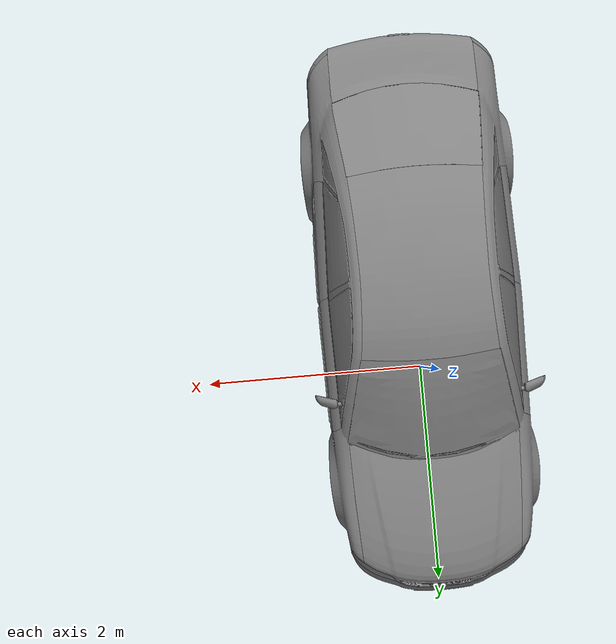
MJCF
<mujoco model="obj_car">
    <asset>
    <!-- 모델 자산 정의 -->
    <mesh name = "back_bumper" file = "../car_mesh/back_bumper.obj"/>
    <mesh name = "back_left_door" file= "../car_mesh/back_left_door.obj"/>
    <mesh name = "back_left_wheel" file= "../car_mesh/back_left_wheel.obj"/>
    <mesh name = "back_left_window" file= "../car_mesh/back_left_window.obj"/>
    <mesh name = "back_license_plate" file= "../car_mesh/back_license_plate.obj"/>
    <mesh name = "back_right_door" file= "../car_mesh/back_right_door.obj"/>
    <mesh name = "back_right_wheel" file= "../car_mesh/back_right_wheel.obj"/>
    <mesh name = "back_right_window" file= "../car_mesh/back_right_window.obj"/>
    <mesh name = "back_windshield" file= "../car_mesh/back_windshield.obj"/>
    <mesh name = "front_bumper" file= "../car_mesh/front_bumper.obj"/>
    <mesh name = "front_left_door" file= "../car_mesh/front_left_door.obj"/>
    <mesh name = "front_left_wheel" file= "../car_mesh/front_left_wheel.obj"/>
    <mesh name = "front_left_window" file= "../car_mesh/front_left_window.obj"/>
    <mesh name = "front_license_plate" file= "../car_mesh/front_license_plate.obj"/>
    <mesh name = "front_right_door" file= "../car_mesh/front_right_door.obj"/>
    <mesh name = "front_right_wheel" file= "../car_mesh/front_right_wheel.obj"/>
    <mesh name = "front_right_window" file= "../car_mesh/front_right_window.obj"/>
    <mesh name = "front_windshield" file= "../car_mesh/front_windshield.obj"/>
    <mesh name = "hood" file= "../car_mesh/hood.obj"/>
    <mesh name = "left_frame" file= "../car_mesh/left_frame.obj"/>
    <mesh name = "left_head_light" file= "../car_mesh/left_head_light.obj"/>
    <mesh name = "left_mirror" file= "../car_mesh/left_mirror.obj"/>
    <mesh name = "left_quarter_window" file= "../car_mesh/left_quarter_window.obj"/>
    <mesh name = "left_tail_light" file= "../car_mesh/left_tail_light.obj"/>
    <mesh name = "right_frame" file= "../car_mesh/right_frame.obj"/>
    <mesh name = "right_head_light" file= "../car_mesh/right_head_light.obj"/>
    <mesh name = "right_mirror" file= "../car_mesh/right_mirror.obj"/>
    <mesh name = "right_quarter_window" file= "../car_mesh/right_quarter_window.obj"/>
    <mesh name = "right_tail_light" file= "../car_mesh/right_tail_light.obj"/>
    <mesh name = "roof" file= "../car_mesh/roof.obj"/>
    <mesh name = "trunk" file= "../car_mesh/trunk.obj"/>

    </asset>

    <worldbody>
        <body name="obj_car" pos="0 0 0.65">

            <body name = "back_bumper" pos = "0.0 0.0 0.0">
                <geom type = "mesh" mesh = "back_bumper" name = "back_bumper_geom"/>
            </body>

            <body name = "back_left_door" pos = "0.0 0.0 0.0">
                <geom type = "mesh" mesh = "back_left_door" name = "back_left_door_geom" />
            </body>

            <body name = "back_left_wheel" pos = "0.0 0.0 0.0">
                <geom type = "mesh" mesh = "back_left_wheel" name = "back_left_wheel_geom" />
            </body>

            <body name = "back_left_window" pos = "0.0 0.0 0.0">
                <geom type = "mesh" mesh = "back_left_window" name = "back_left_window_geom" />
            </body>

            <body name = "back_license_plate" pos = "0.0 0.0 0.0">
                <geom type = "mesh" mesh = "back_license_plate" name = "back_license_plate_geom" />
            </body>

            <body name = "back_right_door" pos = "0.0 0.0 0.0">
                <geom type = "mesh" mesh = "back_right_door" name = "back_right_door_geom" />
            </body>

            <body name = "back_right_wheel" pos = "0.0 0.0 0.0">
                <geom type = "mesh" mesh = "back_right_wheel" name = "back_right_wheel_geom" />
            </body>

            <body name = "back_right_window" pos = "0.0 0.0 0.0">
                <geom type = "mesh" mesh = "back_right_window" name = "back_right_window_geom" />
            </body>

            <body name = "back_windshield" pos = "0.0 0.0 0.0">
                <geom type = "mesh" mesh = "back_windshield" name = "back_windshield_geom" />
            </body>

            <body name = "front_bumper" pos = "0.0 0.0 0.0">
                <geom type = "mesh" mesh = "front_bumper" name = "front_bumper_geom" />
            </body>

            <body name = "front_left_door" pos = "0.0 0.0 0.0">
                <geom type = "mesh" mesh = "front_left_door" name = "front_left_door_geom" />
            </body>

            <body name = "front_left_wheel" pos = "0.0 0.0 0.0">
                <geom type = "mesh" mesh = "front_left_wheel" name = "front_left_wheel_geom" />
            </body>

            <body name = "front_left_window" pos = "0.0 0.0 0.0">
                <geom type = "mesh" mesh = "front_left_window" name = "front_left_window_geom" />
            </body>

            <body name = "front_license_plate" pos = "0.0 0.0 0.0">
                <geom type = "mesh" mesh = "front_license_plate" name = "front_license_plate_geom" />
            </body>

            <body name = "front_right_door" pos = "0.0 0.0 0.0">
                <geom type = "mesh" mesh = "front_right_door" name = "front_right_door_geom" />
            </body>

            <body name = "front_right_wheel" pos = "0.0 0.0 0.0">
                <geom type = "mesh" mesh = "front_right_wheel" name = "front_right_wheel_geom" />
            </body>

            <body name = "front_right_window" pos = "0.0 0.0 0.0">
                <geom type = "mesh" mesh = "front_right_window" name = "front_right_window_geom" />
            </body>

            <body name = "front_windshield" pos = "0.0 0.0 0.0">
                <geom type = "mesh" mesh = "front_windshield" name = "front_windshield_geom" />
            </body>

            <body name = "hood" pos = "0.0 0.0 0.0">
                <geom type = "mesh" mesh = "hood" name = "hood_geom" />
            </body>

            <body name = "left_frame" pos = "0.0 0.0 0.0">
                <geom type = "mesh" mesh = "left_frame" name = "left_frame_geom" />
            </body>

            <body name = "left_head_light" pos = "0.0 0.0 0.0">
                <geom type = "mesh" mesh = "left_head_light" name = "left_head_light_geom" />
            </body>

            <body name = "left_mirror" pos = "0.0 0.0 0.0">
                <geom type = "mesh" mesh = "left_mirror" name = "left_mirror_geom" />
            </body>

            <body name = "left_quarter_window" pos = "0.0 0.0 0.0">
                <geom type = "mesh" mesh = "left_quarter_window" name = "left_quarter_window_geom" />
            </body>

            <body name = "left_tail_light" pos = "0.0 0.0 0.0">
                <geom type = "mesh" mesh = "left_tail_light" name = "left_tail_light_geom" />
            </body>

            <body name = "right_frame" pos = "0.0 0.0 0.0">
                <geom type = "mesh" mesh = "right_frame" name = "right_frame_geom" />
            </body>

            <body name = "right_head_light" pos = "0.0 0.0 0.0">
                <geom type = "mesh" mesh = "right_head_light" name = "right_head_light_geom" />
            </body>

            <body name = "right_mirror" pos = "0.0 0.0 0.0">
                <geom type = "mesh" mesh = "right_mirror" name = "right_mirror_geom" />
            </body>

            <body name = "right_quarter_window" pos = "0.0 0.0 0.0">
                <geom type = "mesh" mesh = "right_quarter_window" name = "right_quarter_window_geom" />
            </body>

            <body name = "right_tail_light" pos = "0.0 0.0 0.0">
                <geom type = "mesh" mesh = "right_tail_light" name = "right_tail_light_geom" />
            </body>

            <body name = "roof" pos = "0.0 0.0 0.0">
                <geom type = "mesh" mesh = "roof" name = "roof_geom" />
            </body>

            <body name = "trunk" pos = "0.0 0.0 0.0">
                <geom type = "mesh" mesh = "trunk" name = "trunk_geom" />
            </body>

        </body>

    </worldbody>
</mujoco>
